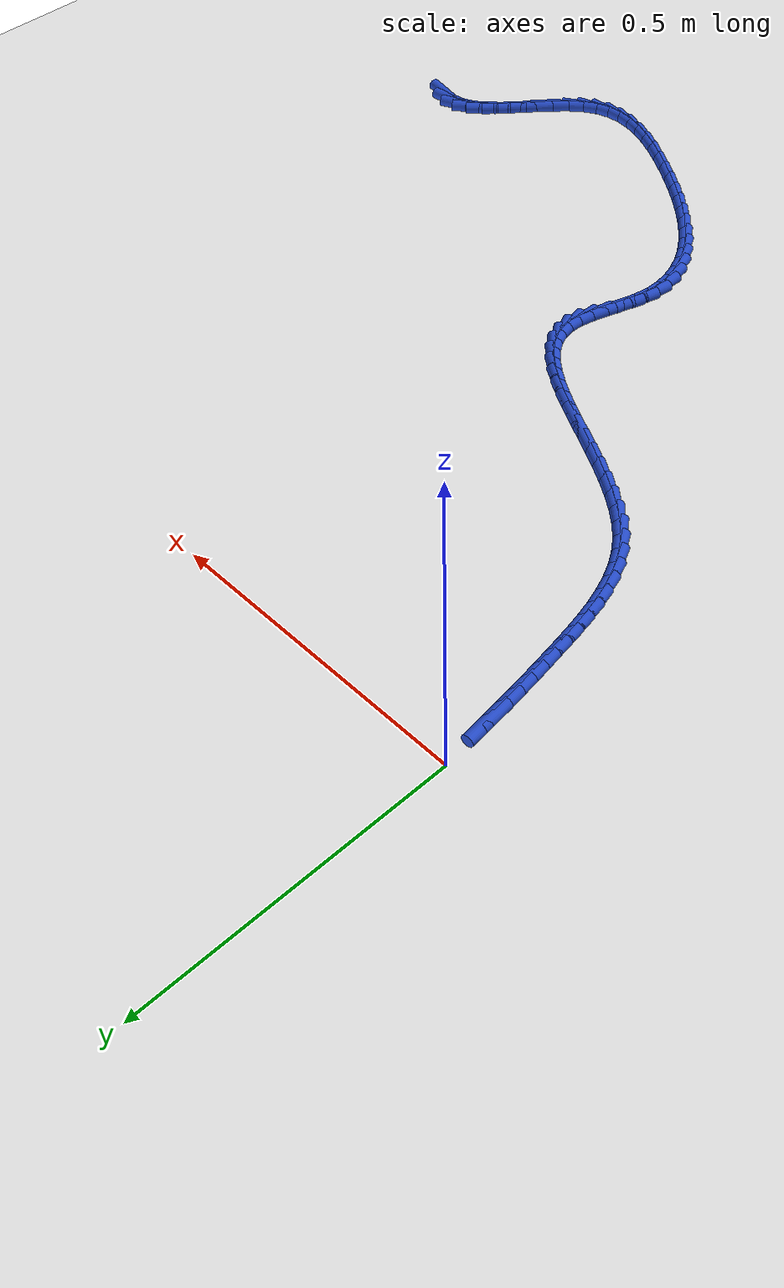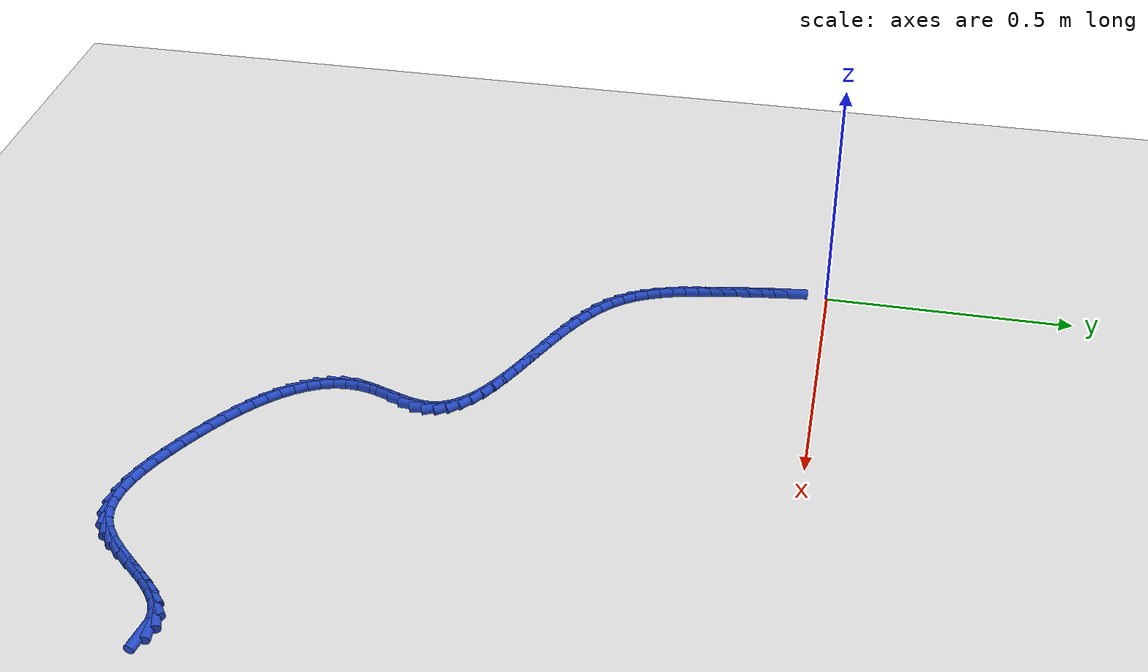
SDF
<sdf version="1.6">
 <world name="default">
  <model name="ground_plane">
   <static>1</static>
   <link name="link">
    <collision name="collision">
     <geometry><plane><normal>0 0 1</normal><size>100 100</size></plane></geometry>
     <surface><friction><ode><mu>100</mu><mu2>50</mu2></ode></friction></surface>
    </collision>
    <visual name="visual">
     <cast_shadows>0</cast_shadows>
     <geometry><plane><normal>0 0 1</normal><size>100 100</size></plane></geometry>
     <material>
      <script><uri>file://media/materials/scripts/gazebo.material</uri><name>Gazebo/WhiteGlow</name></script>
     </material>
    </visual>
   </link>
  </model>
  <model name="line">
   <link name="link_208">
    <pose>1.0637297525632616 -1.0400623073822826 0.01 0 1.57 -0.19041733045246675</pose>
    <collision name="collision">
     <geometry><cylinder><radius>0.01</radius><length>0.08</length></cylinder></geometry>
    </collision>
    <visual name="visual">
     <material>
      <script><name>Gazebo/Blue</name><uri>file://media/materials/scripts/gazebo.material</uri></script>
     </material>
     <geometry><cylinder><radius>0.01</radius><length>0.08</length></cylinder></geometry>
    </visual>
   </link>
   <link name="link_209">
    <pose>1.0413303942126055 -1.0357447719586341 0.01 0 1.57 0.13840396930490445</pose>
    <collision name="collision">
     <geometry><cylinder><radius>0.01</radius><length>0.08</length></cylinder></geometry>
    </collision>
    <visual name="visual">
     <material>
      <script><name>Gazebo/Blue</name><uri>file://media/materials/scripts/gazebo.material</uri></script>
     </material>
     <geometry><cylinder><radius>0.01</radius><length>0.08</length></cylinder></geometry>
    </visual>
   </link>
   <link name="link_210">
    <pose>1.019974097374246 -1.0387195873618515 0.01 0 1.57 0.45263117444015477</pose>
    <collision name="collision">
     <geometry><cylinder><radius>0.01</radius><length>0.08</length></cylinder></geometry>
    </collision>
    <visual name="visual">
     <material>
      <script><name>Gazebo/Blue</name><uri>file://media/materials/scripts/gazebo.material</uri></script>
     </material>
     <geometry><cylinder><radius>0.01</radius><length>0.08</length></cylinder></geometry>
    </visual>
   </link>
   <link name="link_211">
    <pose>0.9995747823152481 -1.0486398628369262 0.01 0 1.57 0.6640806990872044</pose>
    <collision name="collision">
     <geometry><cylinder><radius>0.01</radius><length>0.08</length></cylinder></geometry>
    </collision>
    <visual name="visual">
     <material>
      <script><name>Gazebo/Blue</name><uri>file://media/materials/scripts/gazebo.material</uri></script>
     </material>
     <geometry><cylinder><radius>0.01</radius><length>0.08</length></cylinder></geometry>
    </visual>
   </link>
   <link name="link_212">
    <pose>0.9798757302618903 -1.0640576093182597 0.01 0 1.57 0.7904417297774782</pose>
    <collision name="collision">
     <geometry><cylinder><radius>0.01</radius><length>0.08</length></cylinder></geometry>
    </collision>
    <visual name="visual">
     <material>
      <script><name>Gazebo/Blue</name><uri>file://media/materials/scripts/gazebo.material</uri></script>
     </material>
     <geometry><cylinder><radius>0.01</radius><length>0.08</length></cylinder></geometry>
    </visual>
   </link>
   <link name="link_213">
    <pose>0.960618011314368 -1.083510569802605 0.01 0 1.57 0.8570638624036618</pose>
    <collision name="collision">
     <geometry><cylinder><radius>0.01</radius><length>0.08</length></cylinder></geometry>
    </collision>
    <visual name="visual">
     <material>
      <script><name>Gazebo/Blue</name><uri>file://media/materials/scripts/gazebo.material</uri></script>
     </material>
     <geometry><cylinder><radius>0.01</radius><length>0.08</length></cylinder></geometry>
    </visual>
   </link>
   <link name="link_214">
    <pose>0.9415426955728765 -1.105536487286716 0.01 0 1.57 0.8793491818464393</pose>
    <collision name="collision">
     <geometry><cylinder><radius>0.01</radius><length>0.08</length></cylinder></geometry>
    </collision>
    <visual name="visual">
     <material>
      <script><name>Gazebo/Blue</name><uri>file://media/materials/scripts/gazebo.material</uri></script>
     </material>
     <geometry><cylinder><radius>0.01</radius><length>0.08</length></cylinder></geometry>
    </visual>
   </link>
   <link name="link_215">
    <pose>0.9223908531376113 -1.128673104767345 0.01 0 1.57 0.8632527200740815</pose>
    <collision name="collision">
     <geometry><cylinder><radius>0.01</radius><length>0.08</length></cylinder></geometry>
    </collision>
    <visual name="visual">
     <material>
      <script><name>Gazebo/Blue</name><uri>file://media/materials/scripts/gazebo.material</uri></script>
     </material>
     <geometry><cylinder><radius>0.01</radius><length>0.08</length></cylinder></geometry>
    </visual>
   </link>
   <link name="link_216">
    <pose>0.9029035541087678 -1.1514581652412454 0.01 0 1.57 0.8070634066039641</pose>
    <collision name="collision">
     <geometry><cylinder><radius>0.01</radius><length>0.08</length></cylinder></geometry>
    </collision>
    <visual name="visual">
     <material>
      <script><name>Gazebo/Blue</name><uri>file://media/materials/scripts/gazebo.material</uri></script>
     </material>
     <geometry><cylinder><radius>0.01</radius><length>0.08</length></cylinder></geometry>
    </visual>
   </link>
   <link name="link_217">
    <pose>0.8828218685865412 -1.1724294117051723 0.01 0 1.57 0.7017262135363214</pose>
    <collision name="collision">
     <geometry><cylinder><radius>0.01</radius><length>0.08</length></cylinder></geometry>
    </collision>
    <visual name="visual">
     <material>
      <script><name>Gazebo/Blue</name><uri>file://media/materials/scripts/gazebo.material</uri></script>
     </material>
     <geometry><cylinder><radius>0.01</radius><length>0.08</length></cylinder></geometry>
    </visual>
   </link>
   <link name="link_218">
    <pose>0.861886866671128 -1.1901245871558768 0.01 0 1.57 0.5313235618770019</pose>
    <collision name="collision">
     <geometry><cylinder><radius>0.01</radius><length>0.08</length></cylinder></geometry>
    </collision>
    <visual name="visual">
     <material>
      <script><name>Gazebo/Blue</name><uri>file://media/materials/scripts/gazebo.material</uri></script>
     </material>
     <geometry><cylinder><radius>0.01</radius><length>0.08</length></cylinder></geometry>
    </visual>
   </link>
   <link name="link_219">
    <pose>0.8398396654939255 -1.203081646429711 0.01 0 1.57 0.2998216186457412</pose>
    <collision name="collision">
     <geometry><cylinder><radius>0.01</radius><length>0.08</length></cylinder></geometry>
    </collision>
    <visual name="visual">
     <material>
      <script><name>Gazebo/Blue</name><uri>file://media/materials/scripts/gazebo.material</uri></script>
     </material>
     <geometry><cylinder><radius>0.01</radius><length>0.08</length></cylinder></geometry>
    </visual>
   </link>
   <link name="link_220">
    <pose>0.8165216546629174 -1.2102901951837162 0.01 0 1.57 0.07578718412674956</pose>
    <collision name="collision">
     <geometry><cylinder><radius>0.01</radius><length>0.08</length></cylinder></geometry>
    </collision>
    <visual name="visual">
     <material>
      <script><name>Gazebo/Blue</name><uri>file://media/materials/scripts/gazebo.material</uri></script>
     </material>
     <geometry><cylinder><radius>0.01</radius><length>0.08</length></cylinder></geometry>
    </visual>
   </link>
   <link name="link_221">
    <pose>0.7920863287940022 -1.2121456334440919 0.01 0 1.57 -0.11120858024393218</pose>
    <collision name="collision">
     <geometry><cylinder><radius>0.01</radius><length>0.08</length></cylinder></geometry>
    </collision>
    <visual name="visual">
     <material>
      <script><name>Gazebo/Blue</name><uri>file://media/materials/scripts/gazebo.material</uri></script>
     </material>
     <geometry><cylinder><radius>0.01</radius><length>0.08</length></cylinder></geometry>
    </visual>
   </link>
   <link name="link_222">
    <pose>0.7667477318579916 -1.2093160897740185 0.01 0 1.57 -0.25721482552804953</pose>
    <collision name="collision">
     <geometry><cylinder><radius>0.01</radius><length>0.08</length></cylinder></geometry>
    </collision>
    <visual name="visual">
     <material>
      <script><name>Gazebo/Blue</name><uri>file://media/materials/scripts/gazebo.material</uri></script>
     </material>
     <geometry><cylinder><radius>0.01</radius><length>0.08</length></cylinder></geometry>
    </visual>
   </link>
   <link name="link_223">
    <pose>0.7407199078256975 -1.2024696927366787 0.01 0 1.57 -0.3672283151043894</pose>
    <collision name="collision">
     <geometry><cylinder><radius>0.01</radius><length>0.08</length></cylinder></geometry>
    </collision>
    <visual name="visual">
     <material>
      <script><name>Gazebo/Blue</name><uri>file://media/materials/scripts/gazebo.material</uri></script>
     </material>
     <geometry><cylinder><radius>0.01</radius><length>0.08</length></cylinder></geometry>
    </visual>
   </link>
   <link name="link_224">
    <pose>0.7142169006679315 -1.1922745708952533 0.01 0 1.57 -0.4483980535265634</pose>
    <collision name="collision">
     <geometry><cylinder><radius>0.01</radius><length>0.08</length></cylinder></geometry>
    </collision>
    <visual name="visual">
     <material>
      <script><name>Gazebo/Blue</name><uri>file://media/materials/scripts/gazebo.material</uri></script>
     </material>
     <geometry><cylinder><radius>0.01</radius><length>0.08</length></cylinder></geometry>
    </visual>
   </link>
   <link name="link_225">
    <pose>0.6874527543555061 -1.1793988528129238 0.01 0 1.57 -0.5069004451546416</pose>
    <collision name="collision">
     <geometry><cylinder><radius>0.01</radius><length>0.08</length></cylinder></geometry>
    </collision>
    <visual name="visual">
     <material>
      <script><name>Gazebo/Blue</name><uri>file://media/materials/scripts/gazebo.material</uri></script>
     </material>
     <geometry><cylinder><radius>0.01</radius><length>0.08</length></cylinder></geometry>
    </visual>
   </link>
   <link name="link_226">
    <pose>0.6606415128592319 -1.1645106670528715 0.01 0 1.57 -0.5471834570246007</pose>
    <collision name="collision">
     <geometry><cylinder><radius>0.01</radius><length>0.08</length></cylinder></geometry>
    </collision>
    <visual name="visual">
     <material>
      <script><name>Gazebo/Blue</name><uri>file://media/materials/scripts/gazebo.material</uri></script>
     </material>
     <geometry><cylinder><radius>0.01</radius><length>0.08</length></cylinder></geometry>
    </visual>
   </link>
   <link name="link_227">
    <pose>0.6339972357045311 -1.148277998025684 0.01 0 1.57 -0.5763390480645936</pose>
    <collision name="collision">
     <geometry><cylinder><radius>0.01</radius><length>0.08</length></cylinder></geometry>
    </collision>
    <visual name="visual">
     <material>
      <script><name>Gazebo/Blue</name><uri>file://media/materials/scripts/gazebo.material</uri></script>
     </material>
     <geometry><cylinder><radius>0.01</radius><length>0.08</length></cylinder></geometry>
    </visual>
   </link>
   <link name="link_228">
    <pose>0.6077501756071227 -1.1312187594840923 0.01 0 1.57 -0.6081205308755576</pose>
    <collision name="collision">
     <geometry><cylinder><radius>0.01</radius><length>0.08</length></cylinder></geometry>
    </collision>
    <visual name="visual">
     <material>
      <script><name>Gazebo/Blue</name><uri>file://media/materials/scripts/gazebo.material</uri></script>
     </material>
     <geometry><cylinder><radius>0.01</radius><length>0.08</length></cylinder></geometry>
    </visual>
   </link>
   <link name="link_229">
    <pose>0.5821774097350313 -1.1134169187977279 0.01 0 1.57 -0.6455448425488702</pose>
    <collision name="collision">
     <geometry><cylinder><radius>0.01</radius><length>0.08</length></cylinder></geometry>
    </collision>
    <visual name="visual">
     <material>
      <script><name>Gazebo/Blue</name><uri>file://media/materials/scripts/gazebo.material</uri></script>
     </material>
     <geometry><cylinder><radius>0.01</radius><length>0.08</length></cylinder></geometry>
    </visual>
   </link>
   <link name="link_230">
    <pose>0.5575644293810343 -1.0948784652964594 0.01 0 1.57 -0.689563739898006</pose>
    <collision name="collision">
     <geometry><cylinder><radius>0.01</radius><length>0.08</length></cylinder></geometry>
    </collision>
    <visual name="visual">
     <material>
      <script><name>Gazebo/Blue</name><uri>file://media/materials/scripts/gazebo.material</uri></script>
     </material>
     <geometry><cylinder><radius>0.01</radius><length>0.08</length></cylinder></geometry>
    </visual>
   </link>
   <link name="link_231">
    <pose>0.5341967258379093 -1.0756093883101554 0.01 0 1.57 -0.7413626802967829</pose>
    <collision name="collision">
     <geometry><cylinder><radius>0.01</radius><length>0.08</length></cylinder></geometry>
    </collision>
    <visual name="visual">
     <material>
      <script><name>Gazebo/Blue</name><uri>file://media/materials/scripts/gazebo.material</uri></script>
     </material>
     <geometry><cylinder><radius>0.01</radius><length>0.08</length></cylinder></geometry>
    </visual>
   </link>
   <link name="link_232">
    <pose>0.512359790398434 -1.0556156771686847 0.01 0 1.57 -0.8023773426924629</pose>
    <collision name="collision">
     <geometry><cylinder><radius>0.01</radius><length>0.08</length></cylinder></geometry>
    </collision>
    <visual name="visual">
     <material>
      <script><name>Gazebo/Blue</name><uri>file://media/materials/scripts/gazebo.material</uri></script>
     </material>
     <geometry><cylinder><radius>0.01</radius><length>0.08</length></cylinder></geometry>
    </visual>
   </link>
   <link name="link_233">
    <pose>0.49233911435538597 -1.0349033212019165 0.01 0 1.57 -0.8742771482462619</pose>
    <collision name="collision">
     <geometry><cylinder><radius>0.01</radius><length>0.08</length></cylinder></geometry>
    </collision>
    <visual name="visual">
     <material>
      <script><name>Gazebo/Blue</name><uri>file://media/materials/scripts/gazebo.material</uri></script>
     </material>
     <geometry><cylinder><radius>0.01</radius><length>0.08</length></cylinder></geometry>
    </visual>
   </link>
   <link name="link_234">
    <pose>0.4744201890015423 -1.0134783097397184 0.01 0 1.57 -0.9588732594498621</pose>
    <collision name="collision">
     <geometry><cylinder><radius>0.01</radius><length>0.08</length></cylinder></geometry>
    </collision>
    <visual name="visual">
     <material>
      <script><name>Gazebo/Blue</name><uri>file://media/materials/scripts/gazebo.material</uri></script>
     </material>
     <geometry><cylinder><radius>0.01</radius><length>0.08</length></cylinder></geometry>
    </visual>
   </link>
   <link name="link_235">
    <pose>0.4588885056296817 -0.9913466321119602 0.01 0 1.57 -1.0578829868649682</pose>
    <collision name="collision">
     <geometry><cylinder><radius>0.01</radius><length>0.08</length></cylinder></geometry>
    </collision>
    <visual name="visual">
     <material>
      <script><name>Gazebo/Blue</name><uri>file://media/materials/scripts/gazebo.material</uri></script>
     </material>
     <geometry><cylinder><radius>0.01</radius><length>0.08</length></cylinder></geometry>
    </visual>
   </link>
   <link name="link_236">
    <pose>0.44602955553258145 -0.9685142776485108 0.01 0 1.57 -1.1724687630577577</pose>
    <collision name="collision">
     <geometry><cylinder><radius>0.01</radius><length>0.08</length></cylinder></geometry>
    </collision>
    <visual name="visual">
     <material>
      <script><name>Gazebo/Blue</name><uri>file://media/materials/scripts/gazebo.material</uri></script>
     </material>
     <geometry><cylinder><radius>0.01</radius><length>0.08</length></cylinder></geometry>
    </visual>
   </link>
   <link name="link_237">
    <pose>0.43612883000301894 -0.9449872356792381 0.01 0 1.57 -1.3025191442805935</pose>
    <collision name="collision">
     <geometry><cylinder><radius>0.01</radius><length>0.08</length></cylinder></geometry>
    </collision>
    <visual name="visual">
     <material>
      <script><name>Gazebo/Blue</name><uri>file://media/materials/scripts/gazebo.material</uri></script>
     </material>
     <geometry><cylinder><radius>0.01</radius><length>0.08</length></cylinder></geometry>
    </visual>
   </link>
   <link name="link_238">
    <pose>0.42947182033377174 -0.9207714955340109 0.01 0 1.57 -1.445828570561151</pose>
    <collision name="collision">
     <geometry><cylinder><radius>0.01</radius><length>0.08</length></cylinder></geometry>
    </collision>
    <visual name="visual">
     <material>
      <script><name>Gazebo/Blue</name><uri>file://media/materials/scripts/gazebo.material</uri></script>
     </material>
     <geometry><cylinder><radius>0.01</radius><length>0.08</length></cylinder></geometry>
    </visual>
   </link>
   <link name="link_239">
    <pose>0.4263440178176177 -0.8958730465426988 0.01 0 1.57 1.5439448580635762</pose>
    <collision name="collision">
     <geometry><cylinder><radius>0.01</radius><length>0.08</length></cylinder></geometry>
    </collision>
    <visual name="visual">
     <material>
      <script><name>Gazebo/Blue</name><uri>file://media/materials/scripts/gazebo.material</uri></script>
     </material>
     <geometry><cylinder><radius>0.01</radius><length>0.08</length></cylinder></geometry>
    </visual>
   </link>
   <link name="link_240">
    <pose>0.4270309137473343 -0.8702978780351696 0.01 0 1.57 1.3946261077720012</pose>
    <collision name="collision">
     <geometry><cylinder><radius>0.01</radius><length>0.08</length></cylinder></geometry>
    </collision>
    <visual name="visual">
     <material>
      <script><name>Gazebo/Blue</name><uri>file://media/materials/scripts/gazebo.material</uri></script>
     </material>
     <geometry><cylinder><radius>0.01</radius><length>0.08</length></cylinder></geometry>
    </visual>
   </link>
   <link name="link_241">
    <pose>0.43169818075939087 -0.8440795847901342 0.01 0 1.57 1.29336571870184</pose>
    <collision name="collision">
     <geometry><cylinder><radius>0.01</radius><length>0.08</length></cylinder></geometry>
    </collision>
    <visual name="visual">
     <material>
      <script><name>Gazebo/Blue</name><uri>file://media/materials/scripts/gazebo.material</uri></script>
     </material>
     <geometry><cylinder><radius>0.01</radius><length>0.08</length></cylinder></geometry>
    </visual>
   </link>
   <link name="link_242">
    <pose>0.43925566640651165 -0.8175410956196785 0.01 0 1.57 1.2551922952025163</pose>
    <collision name="collision">
     <geometry><cylinder><radius>0.01</radius><length>0.08</length></cylinder></geometry>
    </collision>
    <visual name="visual">
     <material>
      <script><name>Gazebo/Blue</name><uri>file://media/materials/scripts/gazebo.material</uri></script>
     </material>
     <geometry><cylinder><radius>0.01</radius><length>0.08</length></cylinder></geometry>
    </visual>
   </link>
   <link name="link_243">
    <pose>0.44786367531655297 -0.7911780292116101 0.01 0 1.57 1.2757047045664387</pose>
    <collision name="collision">
     <geometry><cylinder><radius>0.01</radius><length>0.08</length></cylinder></geometry>
    </collision>
    <visual name="visual">
     <material>
      <script><name>Gazebo/Blue</name><uri>file://media/materials/scripts/gazebo.material</uri></script>
     </material>
     <geometry><cylinder><radius>0.01</radius><length>0.08</length></cylinder></geometry>
    </visual>
   </link>
   <link name="link_244">
    <pose>0.4556724828354444 -0.7654883149358788 0.01 0 1.57 1.3633740651124335</pose>
    <collision name="collision">
     <geometry><cylinder><radius>0.01</radius><length>0.08</length></cylinder></geometry>
    </collision>
    <visual name="visual">
     <material>
      <script><name>Gazebo/Blue</name><uri>file://media/materials/scripts/gazebo.material</uri></script>
     </material>
     <geometry><cylinder><radius>0.01</radius><length>0.08</length></cylinder></geometry>
    </visual>
   </link>
   <link name="link_245">
    <pose>0.46083236430911595 -0.7409698821624314 0.01 0 1.57 1.5382043678495299</pose>
    <collision name="collision">
     <geometry><cylinder><radius>0.01</radius><length>0.08</length></cylinder></geometry>
    </collision>
    <visual name="visual">
     <material>
      <script><name>Gazebo/Blue</name><uri>file://media/materials/scripts/gazebo.material</uri></script>
     </material>
     <geometry><cylinder><radius>0.01</radius><length>0.08</length></cylinder></geometry>
    </visual>
   </link>
   <link name="link_246">
    <pose>0.46157815465197266 -0.7180953364192052 0.01 0 1.57 -1.3754972915724333</pose>
    <collision name="collision">
     <geometry><cylinder><radius>0.01</radius><length>0.08</length></cylinder></geometry>
    </collision>
    <visual name="visual">
     <material>
      <script><name>Gazebo/Blue</name><uri>file://media/materials/scripts/gazebo.material</uri></script>
     </material>
     <geometry><cylinder><radius>0.01</radius><length>0.08</length></cylinder></geometry>
    </visual>
   </link>
   <link name="link_247">
    <pose>0.45739756153527394 -0.6969620737536883 0.01 0 1.57 -1.1543560496625176</pose>
    <collision name="collision">
     <geometry><cylinder><radius>0.01</radius><length>0.08</length></cylinder></geometry>
    </collision>
    <visual name="visual">
     <material>
      <script><name>Gazebo/Blue</name><uri>file://media/materials/scripts/gazebo.material</uri></script>
     </material>
     <geometry><cylinder><radius>0.01</radius><length>0.08</length></cylinder></geometry>
    </visual>
   </link>
   <link name="link_248">
    <pose>0.448736459275759 -0.6773805391185618 0.01 0 1.57 -0.9632882295489977</pose>
    <collision name="collision">
     <geometry><cylinder><radius>0.01</radius><length>0.08</length></cylinder></geometry>
    </collision>
    <visual name="visual">
     <material>
      <script><name>Gazebo/Blue</name><uri>file://media/materials/scripts/gazebo.material</uri></script>
     </material>
     <geometry><cylinder><radius>0.01</radius><length>0.08</length></cylinder></geometry>
    </visual>
   </link>
   <link name="link_249">
    <pose>0.4360650085562804 -0.6591539042021141 0.01 0 1.57 -0.8111412675864936</pose>
    <collision name="collision">
     <geometry><cylinder><radius>0.01</radius><length>0.08</length></cylinder></geometry>
    </collision>
    <visual name="visual">
     <material>
      <script><name>Gazebo/Blue</name><uri>file://media/materials/scripts/gazebo.material</uri></script>
     </material>
     <geometry><cylinder><radius>0.01</radius><length>0.08</length></cylinder></geometry>
    </visual>
   </link>
   <link name="link_250">
    <pose>0.4198533700596904 -0.6420853406926327 0.01 0 1.57 -0.6959389004911324</pose>
    <collision name="collision">
     <geometry><cylinder><radius>0.01</radius><length>0.08</length></cylinder></geometry>
    </collision>
    <visual name="visual">
     <material>
      <script><name>Gazebo/Blue</name><uri>file://media/materials/scripts/gazebo.material</uri></script>
     </material>
     <geometry><cylinder><radius>0.01</radius><length>0.08</length></cylinder></geometry>
    </visual>
   </link>
   <link name="link_251">
    <pose>0.40057170446884127 -0.6259780202784062 0.01 0 1.57 -0.6115178706928156</pose>
    <collision name="collision">
     <geometry><cylinder><radius>0.01</radius><length>0.08</length></cylinder></geometry>
    </collision>
    <visual name="visual">
     <material>
      <script><name>Gazebo/Blue</name><uri>file://media/materials/scripts/gazebo.material</uri></script>
     </material>
     <geometry><cylinder><radius>0.01</radius><length>0.08</length></cylinder></geometry>
    </visual>
   </link>
   <link name="link_252">
    <pose>0.3786901724665846 -0.610635114647722 0.01 0 1.57 -0.5516299963189893</pose>
    <collision name="collision">
     <geometry><cylinder><radius>0.01</radius><length>0.08</length></cylinder></geometry>
    </collision>
    <visual name="visual">
     <material>
      <script><name>Gazebo/Blue</name><uri>file://media/materials/scripts/gazebo.material</uri></script>
     </material>
     <geometry><cylinder><radius>0.01</radius><length>0.08</length></cylinder></geometry>
    </visual>
   </link>
   <link name="link_253">
    <pose>0.35467893473577405 -0.5958597954888692 0.01 0 1.57 -0.5113456105894453</pose>
    <collision name="collision">
     <geometry><cylinder><radius>0.01</radius><length>0.08</length></cylinder></geometry>
    </collision>
    <visual name="visual">
     <material>
      <script><name>Gazebo/Blue</name><uri>file://media/materials/scripts/gazebo.material</uri></script>
     </material>
     <geometry><cylinder><radius>0.01</radius><length>0.08</length></cylinder></geometry>
    </visual>
   </link>
   <link name="link_254">
    <pose>0.32900815195926125 -0.5814552344901355 0.01 0 1.57 -0.4872057578054644</pose>
    <collision name="collision">
     <geometry><cylinder><radius>0.01</radius><length>0.08</length></cylinder></geometry>
    </collision>
    <visual name="visual">
     <material>
      <script><name>Gazebo/Blue</name><uri>file://media/materials/scripts/gazebo.material</uri></script>
     </material>
     <geometry><cylinder><radius>0.01</radius><length>0.08</length></cylinder></geometry>
    </visual>
   </link>
   <link name="link_255">
    <pose>0.3021479848198986 -0.5672246033398088 0.01 0 1.57 -0.4770114225079646</pose>
    <collision name="collision">
     <geometry><cylinder><radius>0.01</radius><length>0.08</length></cylinder></geometry>
    </collision>
    <visual name="visual">
     <material>
      <script><name>Gazebo/Blue</name><uri>file://media/materials/scripts/gazebo.material</uri></script>
     </material>
     <geometry><cylinder><radius>0.01</radius><length>0.08</length></cylinder></geometry>
    </visual>
   </link>
   <link name="link_256">
    <pose>0.27456859400053835 -0.5529710737261775 0.01 0 1.57 -0.4795888842872277</pose>
    <collision name="collision">
     <geometry><cylinder><radius>0.01</radius><length>0.08</length></cylinder></geometry>
    </collision>
    <visual name="visual">
     <material>
      <script><name>Gazebo/Blue</name><uri>file://media/materials/scripts/gazebo.material</uri></script>
     </material>
     <geometry><cylinder><radius>0.01</radius><length>0.08</length></cylinder></geometry>
    </visual>
   </link>
   <link name="link_257">
    <pose>0.24674014018403292 -0.5384978173375297 0.01 0 1.57 -0.4946238125063134</pose>
    <collision name="collision">
     <geometry><cylinder><radius>0.01</radius><length>0.08</length></cylinder></geometry>
    </collision>
    <visual name="visual">
     <material>
      <script><name>Gazebo/Blue</name><uri>file://media/materials/scripts/gazebo.material</uri></script>
     </material>
     <geometry><cylinder><radius>0.01</radius><length>0.08</length></cylinder></geometry>
    </visual>
   </link>
   <link name="link_258">
    <pose>0.2191327840532345 -0.5236080058621533 0.01 0 1.57 -0.5225721624515509</pose>
    <collision name="collision">
     <geometry><cylinder><radius>0.01</radius><length>0.08</length></cylinder></geometry>
    </collision>
    <visual name="visual">
     <material>
      <script><name>Gazebo/Blue</name><uri>file://media/materials/scripts/gazebo.material</uri></script>
     </material>
     <geometry><cylinder><radius>0.01</radius><length>0.08</length></cylinder></geometry>
    </visual>
   </link>
   <link name="link_259">
    <pose>0.1922166862909954 -0.5081048109883365 0.01 0 1.57 -0.5646278661423175</pose>
    <collision name="collision">
     <geometry><cylinder><radius>0.01</radius><length>0.08</length></cylinder></geometry>
    </collision>
    <visual name="visual">
     <material>
      <script><name>Gazebo/Blue</name><uri>file://media/materials/scripts/gazebo.material</uri></script>
     </material>
     <geometry><cylinder><radius>0.01</radius><length>0.08</length></cylinder></geometry>
    </visual>
   </link>
   <link name="link_260">
    <pose>0.16646200758016796 -0.4917914044043674 0.01 0 1.57 -0.6227063107305757</pose>
    <collision name="collision">
     <geometry><cylinder><radius>0.01</radius><length>0.08</length></cylinder></geometry>
    </collision>
    <visual name="visual">
     <material>
      <script><name>Gazebo/Blue</name><uri>file://media/materials/scripts/gazebo.material</uri></script>
     </material>
     <geometry><cylinder><radius>0.01</radius><length>0.08</length></cylinder></geometry>
    </visual>
   </link>
   <link name="link_261">
    <pose>0.14233890860360385 -0.4744709577985336 0.01 0 1.57 -0.6993615941151111</pose>
    <collision name="collision">
     <geometry><cylinder><radius>0.01</radius><length>0.08</length></cylinder></geometry>
    </collision>
    <visual name="visual">
     <material>
      <script><name>Gazebo/Blue</name><uri>file://media/materials/scripts/gazebo.material</uri></script>
     </material>
     <geometry><cylinder><radius>0.01</radius><length>0.08</length></cylinder></geometry>
    </visual>
   </link>
   <link name="link_262">
    <pose>0.12031755004415676 -0.45594664285912423 0.01 0 1.57 -0.7974753041315217</pose>
    <collision name="collision">
     <geometry><cylinder><radius>0.01</radius><length>0.08</length></cylinder></geometry>
    </collision>
    <visual name="visual">
     <material>
      <script><name>Gazebo/Blue</name><uri>file://media/materials/scripts/gazebo.material</uri></script>
     </material>
     <geometry><cylinder><radius>0.01</radius><length>0.08</length></cylinder></geometry>
    </visual>
   </link>
   <link name="link_263">
    <pose>0.10086809258467828 -0.43602163127442695 0.01 0 1.57 -0.915427610848832</pose>
    <collision name="collision">
     <geometry><cylinder><radius>0.01</radius><length>0.08</length></cylinder></geometry>
    </collision>
    <visual name="visual">
     <material>
      <script><name>Gazebo/Blue</name><uri>file://media/materials/scripts/gazebo.material</uri></script>
     </material>
     <geometry><cylinder><radius>0.01</radius><length>0.08</length></cylinder></geometry>
    </visual>
   </link>
   <link name="link_264">
    <pose>0.08436247737941698 -0.4145498104844639 0.01 0 1.57 -1.0306004653365417</pose>
    <collision name="collision">
     <geometry><cylinder><radius>0.01</radius><length>0.08</length></cylinder></geometry>
    </collision>
    <visual name="visual">
     <material>
      <script><name>Gazebo/Blue</name><uri>file://media/materials/scripts/gazebo.material</uri></script>
     </material>
     <geometry><cylinder><radius>0.01</radius><length>0.08</length></cylinder></geometry>
    </visual>
   </link>
   <link name="link_265">
    <pose>0.07063664952410076 -0.39166183002963295 0.01 0 1.57 -1.1322984715830324</pose>
    <collision name="collision">
     <geometry><cylinder><radius>0.01</radius><length>0.08</length></cylinder></geometry>
    </collision>
    <visual name="visual">
     <material>
      <script><name>Gazebo/Blue</name><uri>file://media/materials/scripts/gazebo.material</uri></script>
     </material>
     <geometry><cylinder><radius>0.01</radius><length>0.08</length></cylinder></geometry>
    </visual>
   </link>
   <link name="link_266">
    <pose>0.05934462272508957 -0.36758227990501535 0.01 0 1.57 -1.2186245868850978</pose>
    <collision name="collision">
     <geometry><cylinder><radius>0.01</radius><length>0.08</length></cylinder></geometry>
    </collision>
    <visual name="visual">
     <material>
      <script><name>Gazebo/Blue</name><uri>file://media/materials/scripts/gazebo.material</uri></script>
     </material>
     <geometry><cylinder><radius>0.01</radius><length>0.08</length></cylinder></geometry>
    </visual>
   </link>
   <link name="link_267">
    <pose>0.05014026239491393 -0.3425358266773596 0.01 0 1.57 -1.28910741739455</pose>
    <collision name="collision">
     <geometry><cylinder><radius>0.01</radius><length>0.08</length></cylinder></geometry>
    </collision>
    <visual name="visual">
     <material>
      <script><name>Gazebo/Blue</name><uri>file://media/materials/scripts/gazebo.material</uri></script>
     </material>
     <geometry><cylinder><radius>0.01</radius><length>0.08</length></cylinder></geometry>
    </visual>
   </link>
   <link name="link_268">
    <pose>0.04267743394610435 -0.3167471369134138 0.01 0 1.57 -1.3441145695197267</pose>
    <collision name="collision">
     <geometry><cylinder><radius>0.01</radius><length>0.08</length></cylinder></geometry>
    </collision>
    <visual name="visual">
     <material>
      <script><name>Gazebo/Blue</name><uri>file://media/materials/scripts/gazebo.material</uri></script>
     </material>
     <geometry><cylinder><radius>0.01</radius><length>0.08</length></cylinder></geometry>
    </visual>
   </link>
   <link name="link_269">
    <pose>0.03661000279119132 -0.29044087717992606 0.01 0 1.57 -1.384329085966846</pose>
    <collision name="collision">
     <geometry><cylinder><radius>0.01</radius><length>0.08</length></cylinder></geometry>
    </collision>
    <visual name="visual">
     <material>
      <script><name>Gazebo/Blue</name><uri>file://media/materials/scripts/gazebo.material</uri></script>
     </material>
     <geometry><cylinder><radius>0.01</radius><length>0.08</length></cylinder></geometry>
    </visual>
   </link>
   <link name="link_270">
    <pose>0.0315918343427052 -0.26384171404364404 0.01 0 1.57 -1.4103771701222425</pose>
    <collision name="collision">
     <geometry><cylinder><radius>0.01</radius><length>0.08</length></cylinder></geometry>
    </collision>
    <visual name="visual">
     <material>
      <script><name>Gazebo/Blue</name><uri>file://media/materials/scripts/gazebo.material</uri></script>
     </material>
     <geometry><cylinder><radius>0.01</radius><length>0.08</length></cylinder></geometry>
    </visual>
   </link>
   <link name="link_271">
    <pose>0.027276794013176796 -0.2371743140713175 0.01 0 1.57 -1.4228226872371343</pose>
    <collision name="collision">
     <geometry><cylinder><radius>0.01</radius><length>0.08</length></cylinder></geometry>
    </collision>
    <visual name="visual">
     <material>
      <script><name>Gazebo/Blue</name><uri>file://media/materials/scripts/gazebo.material</uri></script>
     </material>
     <geometry><cylinder><radius>0.01</radius><length>0.08</length></cylinder></geometry>
    </visual>
   </link>
   <link name="link_272">
    <pose>0.023324288624448287 -0.21065867979302824 0.01 0 1.57 -1.4284713802331992</pose>
    <collision name="collision">
     <geometry><cylinder><radius>0.01</radius><length>0.08</length></cylinder></geometry>
    </collision>
    <visual name="visual">
     <material>
      <script><name>Gazebo/Blue</name><uri>file://media/materials/scripts/gazebo.material</uri></script>
     </material>
     <geometry><cylinder><radius>0.01</radius><length>0.08</length></cylinder></geometry>
    </visual>
   </link>
   <link name="link_273">
    <pose>0.0195581983814707 -0.18437638146537352 0.01 0 1.57 -1.4350779407474243</pose>
    <collision name="collision">
     <geometry><cylinder><radius>0.01</radius><length>0.08</length></cylinder></geometry>
    </collision>
    <visual name="visual">
     <material>
      <script><name>Gazebo/Blue</name><uri>file://media/materials/scripts/gazebo.material</uri></script>
     </material>
     <geometry><cylinder><radius>0.01</radius><length>0.08</length></cylinder></geometry>
    </visual>
   </link>
   <link name="link_274">
    <pose>0.01599052487269632 -0.15825065326456478 0.01 0 1.57 -1.4430366072477294</pose>
    <collision name="collision">
     <geometry><cylinder><radius>0.01</radius><length>0.08</length></cylinder></geometry>
    </collision>
    <visual name="visual">
     <material>
      <script><name>Gazebo/Blue</name><uri>file://media/materials/scripts/gazebo.material</uri></script>
     </material>
     <geometry><cylinder><radius>0.01</radius><length>0.08</length></cylinder></geometry>
    </visual>
   </link>
   <link name="link_275">
    <pose>0.01264356746886948 -0.13219606203482562 0.01 0 1.57 -1.4522873441654949</pose>
    <collision name="collision">
     <geometry><cylinder><radius>0.01</radius><length>0.08</length></cylinder></geometry>
    </collision>
    <visual name="visual">
     <material>
      <script><name>Gazebo/Blue</name><uri>file://media/materials/scripts/gazebo.material</uri></script>
     </material>
     <geometry><cylinder><radius>0.01</radius><length>0.08</length></cylinder></geometry>
    </visual>
   </link>
   <link name="link_276">
    <pose>0.009539625540734516 -0.10612717462037967 0.01 0 1.57 -1.4627443312135722</pose>
    <collision name="collision">
     <geometry><cylinder><radius>0.01</radius><length>0.08</length></cylinder></geometry>
    </collision>
    <visual name="visual">
     <material>
      <script><name>Gazebo/Blue</name><uri>file://media/materials/scripts/gazebo.material</uri></script>
     </material>
     <geometry><cylinder><radius>0.01</radius><length>0.08</length></cylinder></geometry>
    </visual>
   </link>
   <link name="link_277">
    <pose>0.006700998459035756 -0.0799585578654506 0.01 0 1.57 -1.4742982239926279</pose>
    <collision name="collision">
     <geometry><cylinder><radius>0.01</radius><length>0.08</length></cylinder></geometry>
    </collision>
    <visual name="visual">
     <material>
      <script><name>Gazebo/Blue</name><uri>file://media/materials/scripts/gazebo.material</uri></script>
     </material>
     <geometry><cylinder><radius>0.01</radius><length>0.08</length></cylinder></geometry>
    </visual>
   </link>
  </model>
 </world>
</sdf>
